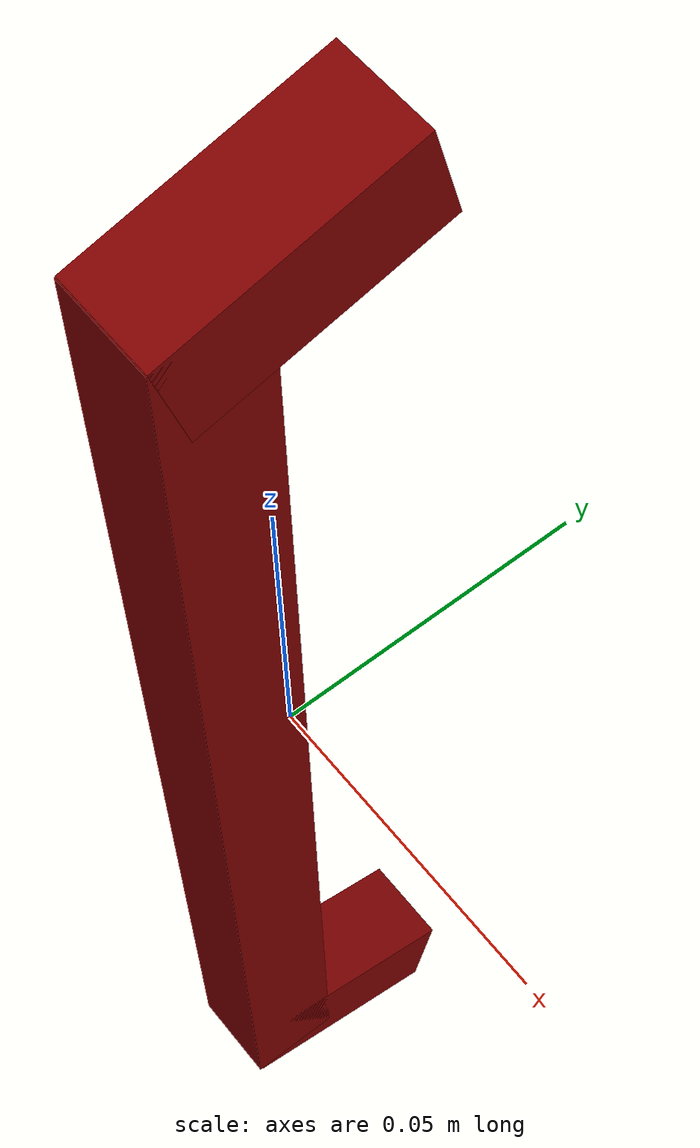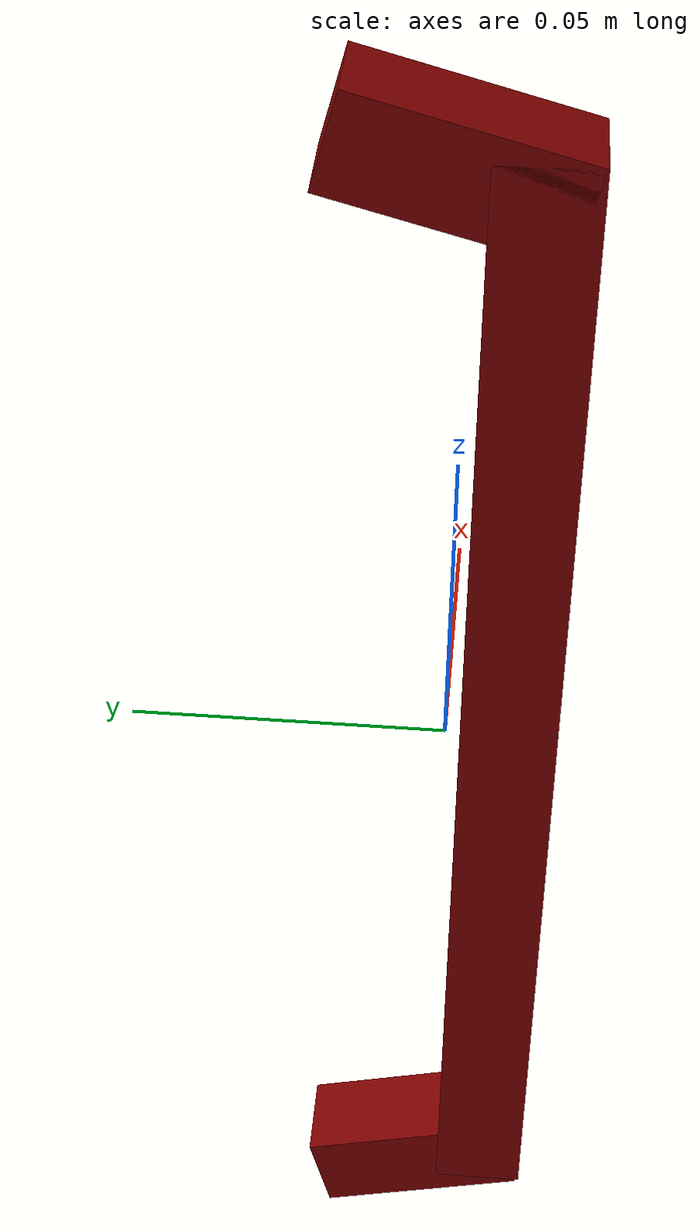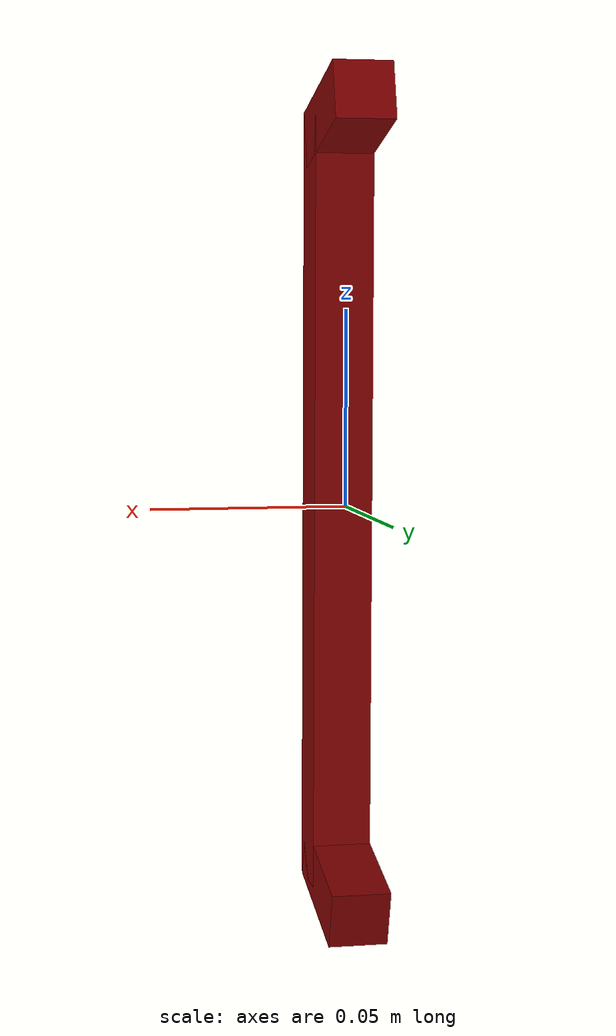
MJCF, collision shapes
<?xml version='1.0' encoding='UTF-8'?>
<mujoco model="model">
  <option timestep="0.002" gravity="0.0 0.0 -9.81"/>
  <compiler angle="radian"/>
  <asset>
    <mesh file="visuals/CabinetHandle033.obj" name="CabinetHandle033_vis"/>
    <texture file="visuals/T_BC001.png" name="tex" type="2d"/>
    <material name="mat" rgba="1 1 1 1.0" texture="tex" shininess="0.4472135901451111" specular="0.3103448502657381"/>
  </asset>
  <default>
    <default class="visual">
      <geom conaffinity="0" contype="0" group="1" type="mesh"/>
    </default>
    <default class="collision">
      <geom group="0" rgba="0.5 0 0 0.5" density="1.0" solref="0.004 1" solimp="0.998 0.998 0.001"/>
    </default>
    <default class="spawn">
      <geom group="0" rgba="1 1 1 0.5" contype="0" conaffinity="0"/>
      <site group="0" rgba="1 1 1 0.5"/>
    </default>
    <default class="region">
      <geom group="1" conaffinity="0" contype="0" rgba="0 1 0 0" mass="0"/>
    </default>
  </default>
  <worldbody>
    <body>
      <body name="object">
        <geom mesh="CabinetHandle033_vis" type="mesh" solimp="0.998 0.998 0.001" solref="0.001 1" friction="0.95 0.3 0.1" class="visual" material="mat"/>
        <geom type="box" pos="-5.272886482998729e-08 -0.009952547959983349 5.854185656062327e-05" size="0.007550871931016445 0.007550839800387621 0.10011377930641174" quat="1.0 0.0 0.0 0.0" class="collision"/>
        <geom type="box" pos="-5.272886482998729e-08 0.0018159218598157167 0.09781546145677567" size="0.007550871931016445 0.00738110113888979 0.017883554100990295" quat="0.6092294454574585 0.7929940223693848 0.0 0.0" class="collision"/>
        <geom type="box" pos="-5.272886482998729e-08 0.002030035713687539 -0.09787438064813614" size="0.007550871931016445 0.007376406341791153 0.017648331820964813" quat="0.6092321276664734 -0.7929919362068176 -0.0 0.0" class="collision"/>
        <geom class="region" name="reg_main" type="box" pos="1.1641532182693481e-10 0.0 0.0" size="0.00855093526095152 0.018503451555967332 0.11015914922952652"/>
      </body>
    </body>
  </worldbody>
  <actuator/>
</mujoco>
